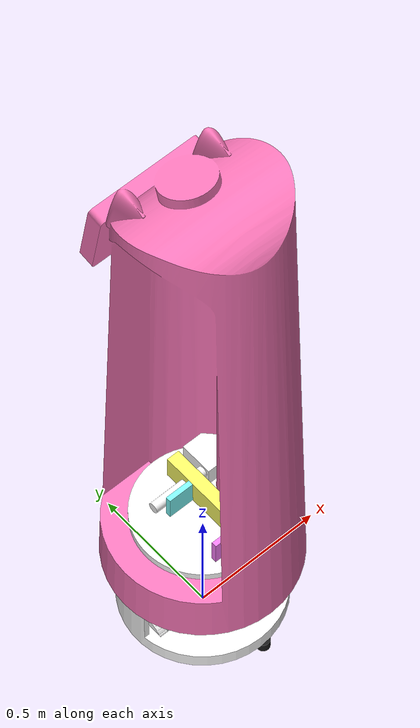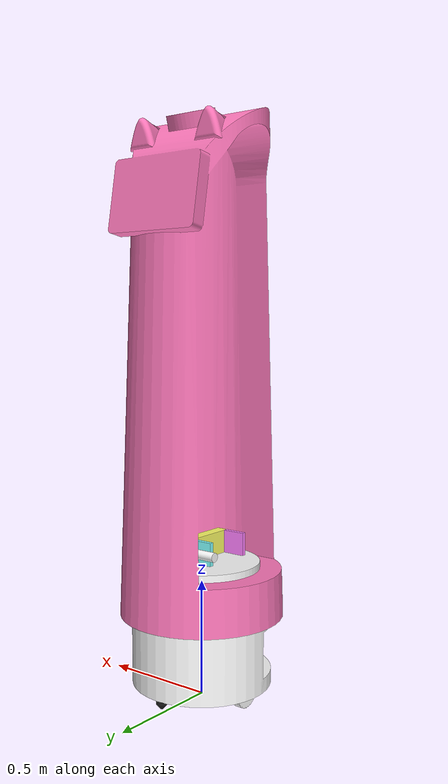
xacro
<?xml version="1.0"?>

<robot name="susy" xmlns:xacro="http://www.ros.org/wiki/xacro">

    <xacro:include filename="$(find susy_description)/urdf/susy_gazebo.xacro"/>
    <xacro:include filename="$(find susy_description)/urdf/susy_ros2_control.xacro"/>

    <xacro:property name="PI" value="3.14159265359"/>

    <xacro:property name="Z" value="0.02"/>
    <!--value="0.04"/-->
    <xacro:property name="escala" value="${Z} ${Z} ${Z}"/>

    <link name="base_footprint"/>

    <link name="base_link">
        <inertial>
            <origin xyz="-0.034449 0.0047388 0.015024" rpy="0 0 0" />
            <mass value="0.010403" />
            <inertia
              ixx="7.888E-07"
              ixy="4.0447E-24"
              ixz="-4.6448E-24"
              iyy="1.1661E-06"
              iyz="1.6738E-24"
              izz="7.6385E-07" />
        </inertial>
        <visual>
            <origin xyz="${Z*-15.0} ${Z*15.0} ${Z*0.0}" rpy="${PI/2} 0.0 0.0"/>
            <geometry>
                <mesh filename="package://susy_description/3Dmodels/base_simple.STL" scale="${escala}"/>
            </geometry>
            <material name="white">
                <color rgba="1.0 1.0 1.0 1.0"/>
            </material>
        </visual>
        <collision>
            <origin xyz="${Z*-15.0} ${Z*15.0} ${Z*0.0}" rpy="0.0 0.0 0.0"/>
            <geometry>
                <mesh filename="package://susy_description/3Dmodels/base_simple.STL" scale="${escala}"/>
            </geometry>
        </collision>
    </link>
    <link name="base_alta">
        <inertial>
          <origin
            xyz="-0.00319040539219524 0.049220093924398 0.000981360360559142"
            rpy="0 0 0" />
          <mass
            value="0.0132287477004238" />
          <inertia
            ixx="1.6270779519678E-05"
            ixy="-3.45923665292277E-08"
            ixz="-5.71408335634743E-08"
            iyy="2.21760234097984E-06"
            iyz="-3.04167868780514E-07"
            izz="1.57245413987899E-05" />
        </inertial>
        <visual>
            <origin xyz="${Z*-17.5} ${Z*17.5} ${Z*0}" rpy="${PI/2} 0.0 0.0"/>
            <geometry>
                <mesh filename="package://susy_description/3Dmodels/base_alta.STL" scale="${escala}"/>
            </geometry>
            <material name="pink">
                <color rgba="1.0 0.47 0.733 1.0"/>
            </material>
        </visual>
        <collision>
            <origin xyz="${Z*-17.5} ${Z*17.5} ${Z*0}" rpy="${PI/2} 0.0 0.0"/>
            <geometry>
                <mesh filename="package://susy_description/3Dmodels/base_alta.STL" scale="${escala}"/>
            </geometry>
        </collision>
    </link>

    <link name="right_wheel">
        <inertial>
            <origin
            xyz="6.93889390390723E-18 0 -1.73472347597681E-18"
            rpy="0 0 0" />
            <mass
            value="5.31571052376292E-05" />
            <inertia
            ixx="2.65196676411871E-10"
            ixy="5.99809599461261E-27"
            ixz="-1.26034226898413E-27"
            iyy="1.45400341050665E-10"
            iyz="-4.05381273347173E-26"
            izz="1.45400341050665E-10" />
        </inertial>
        <visual>
            <origin xyz="${Z*0.0} ${Z*3.2} ${Z*-3.2}" rpy="${PI/2} 0.0 0.0"/>
            <geometry>
                <mesh filename="package://susy_description/3Dmodels/rueda.STL" scale="${escala}"/>
            </geometry>
            <material name="ar">
                <color rgba="1.0 1.0 1.0 1.0"/>
            </material>
        </visual>
        <collision>
            <origin xyz="${Z*0.0} ${Z*0.0} ${Z*0.0}" rpy="${PI/2} 0.0 0.0"/>
            <geometry>
                <sphere radius="${Z*3.2}"/>
            </geometry>
        </collision>
    </link>

    <link name="left_wheel">
        <inertial>
        <origin
            xyz="-3.46944695195361E-18 0 1.73472347597681E-18"
            rpy="0 0 0" />
        <mass
            value="5.31571052376294E-05" />
        <inertia
            ixx="2.65196676411872E-10"
            ixy="7.18881747627078E-27"
            ixz="-2.71331529614589E-27"
            iyy="1.45400341050665E-10"
            iyz="-4.21932577051101E-26"
            izz="1.45400341050665E-10" />
        </inertial>
        <visual>
            <origin xyz="${Z*-1.7} ${Z*3.2} ${Z*-3.2}" rpy="${PI/2} 0.0 0.0"/>
            <geometry>
                <mesh filename="package://susy_description/3Dmodels/rueda.STL" scale="${escala}"/>
            </geometry>
            <material name="ar">
                <color rgba="1.0 1.0 1.0 1.0"/>
            </material>
        </visual>
        <collision>
            <origin xyz="${Z*0.0} ${Z*0} ${Z*0}" rpy="${PI/2} 0.0 0.0"/>
            <geometry>
                <sphere radius="${Z*3.2}"/>
            </geometry>
        </collision>
    </link>

    <link name="caster_front">
        <inertial>
          <origin
            xyz="0 0.00194107729719985 -3.46944695195361E-18"
            rpy="0 0 0" />
          <mass
            value="1.19568337316797E-05" />
          <inertia
            ixx="1.10150680331523E-11"
            ixy="1.84136831372096E-44"
            ixz="-1.70132457547993E-44"
            iyy="8.50890915412933E-12"
            iyz="9.91516005255474E-28"
            izz="1.10150680331523E-11" />
        </inertial>
        <visual>
            <origin xyz="0.0 0.0 ${Z*-3.2}" rpy="${PI/2} 0.0 0.0"/>
            <geometry>
                <mesh filename="package://susy_description/3Dmodels/caster_front.STL" scale="${escala}"/>
            </geometry>
            <material name="dark">
                <color rgba="0.1 0.1 0.1 1.0"/>
            </material>
        </visual>
        <collision>
            <origin xyz="0.0 0.0 ${Z*-2.5}" rpy="0.0 0.0 0.0"/>
            <geometry>
                <sphere radius="${Z*0.69}"/>
            </geometry>
        </collision>
    </link>

    <link name="caster_back">
        <inertial>
          <origin
            xyz="0 0.00194107729719985 -0.00124007338649024"
            rpy="0 0 0" />
          <mass
            value="1.19568337316797E-05" />
          <inertia
            ixx="1.10150680331523E-11"
            ixy="1.84136831372096E-44"
            ixz="-1.70132457547992E-44"
            iyy="8.50890915412933E-12"
            iyz="8.24536042386014E-28"
            izz="1.10150680331523E-11" />
        </inertial>
        <visual>
            <origin xyz="0.0 0.0 ${Z*-3.2}" rpy="${PI/2} 0.0 0.0"/>
            <geometry>
                <mesh filename="package://susy_description/3Dmodels/caster_front.STL" scale="${escala}"/>
            </geometry>
            <material name="dark">
                <color rgba="0.1 0.1 0.1 1.0"/>
            </material>
        </visual>
        <collision>
            <origin xyz="0.0 0.0 ${Z*-2.5}" rpy="0.0 0.0 0.0"/>
            <geometry>
                <sphere radius="${Z*0.69}"/>
            </geometry>
        </collision>
    </link>

    <link name="base_brazo">
        <inertial>
            <origin
                xyz="-0.00131190278884245 0.0013952763323219 -0.00100683541399575"
                rpy="0 0 0" />
            <mass
                value="0.000898428749668525" />
            <inertia
                ixx="3.77000106630414E-08"
                ixy="2.55848945742919E-09"
                ixz="-5.95710974441721E-09"
                iyy="7.06087018620749E-08"
                iyz="2.69437289142249E-09"
                izz="3.61921158112464E-08" />
        </inertial>
        <visual>
            <origin xyz="${Z*12.5} ${Z*12.5} ${Z*0}" rpy="${PI/2} 0.0 ${3.0*PI/2.0}"/>
            <geometry>
                <mesh filename="package://susy_description/3Dmodels/base_brazo.STL" scale="${escala}"/>
            </geometry>
            <material name="solidos">
                <color rgba="1.0 1.0 1.0 1.0"/>
            </material>
        </visual>
        <collision>
            <origin xyz="${Z*12.5} ${Z*12.5} ${Z*0}" rpy="${PI/2} 0.0 ${3.0*PI/2.0}"/>
            <geometry>
                <mesh filename="package://susy_description/3Dmodels/base_brazo.STL" scale="${escala}"/>
            </geometry>
        </collision>
    </link>

    <link name="ante_brazo">
        <inertial>
          <origin
            xyz="-0.000162761065659097 0.00249999999999999 -0.00125"
            rpy="0 0 0" />
          <mass
            value="0.000217146018366026" />
          <inertia
            ixx="5.79883389157145E-10"
            ixy="-1.60129883534209E-25"
            ixz="-3.32164714728325E-24"
            iyy="6.02133781017732E-09"
            iyz="1.04570281756909E-25"
            izz="6.37502743020319E-09" />
        </inertial>
        <visual>
            <origin xyz="${Z*0.0} ${Z*0.0} ${Z*0}" rpy="${PI/2} 0.0 ${3.0*PI/2.0}"/>
            <geometry>
                <mesh filename="package://susy_description/3Dmodels/empujar.STL" scale="${escala}"/>
            </geometry>
            <material name="solidos3">
                <color rgba="1.0 1.0 0.4 1.0"/>
            </material>
        </visual>
        <collision>
            <origin xyz="${Z*0.0} ${Z*0.0} ${Z*0}" rpy="${PI/2} 0.0 ${3.0*PI/2.0}"/>
            <geometry>
                <mesh filename="package://susy_description/3Dmodels/empujar.STL" scale="${escala}"/>
            </geometry>
        </collision>
    </link>

    <link name="garraL">
        <inertial>
          <origin
            xyz="-0.0362340963148376 -0.0150572708310525 0.036304075881177"
            rpy="0 0 0" />
          <mass
            value="0.0249807971751331" />
          <inertia
            ixx="3.66050263139615E-05"
            ixy="-1.07320912031314E-07"
            ixz="1.15336633081441E-06"
            iyy="3.61505056274145E-05"
            iyz="3.74952358099008E-07"
            izz="3.57812220103228E-06" />
        </inertial>
        <visual>
            <origin xyz="${Z*0.0} ${Z*0.0} ${Z*0}" rpy="${PI/2} 0.0 ${3.0*PI/2.0}"/>
            <geometry>
                <mesh filename="package://susy_description/3Dmodels/garra.STL" scale="${escala}"/>
            </geometry>
            <material name="solidos2">
                <color rgba="1.0 0.5 1.0 1.0"/>
            </material>
        </visual>
        <collision>
            <origin xyz="${Z*0.0} ${Z*0.0} ${Z*0}" rpy="${PI/2} 0.0 ${3.0*PI/2.0}"/>
            <geometry>
                <mesh filename="package://susy_description/3Dmodels/garra.STL" scale="${escala}"/>
            </geometry>
        </collision>
    </link>

    <link name="garraR">
        <inertial>
          <origin
            xyz="0.000499999999999997 0.0025 0.0025"
            rpy="0 0 0" />
          <mass
            value="2.5E-05" />
          <inertia
            ixx="1.04166666666666E-10"
            ixy="4.5188437401285E-27"
            ixz="6.46234853557053E-27"
            iyy="5.41666666666665E-11"
            iyz="-4.25179285499401E-26"
            izz="5.41666666666666E-11" />
        </inertial>
        <visual>
            <origin xyz="${Z*0.0} ${Z*0.0} ${Z*0}" rpy="${PI/2} 0.0 ${3.0*PI/2.0}"/>
            <geometry>
                <mesh filename="package://susy_description/3Dmodels/garra.STL" scale="${escala}"/>
            </geometry>
            <material name="solido4">
                <color rgba="0.5 1.0 1.0 1.0"/>
            </material>
        </visual>
        <collision>
            <origin xyz="${Z*0.0} ${Z*0.0} ${Z*0}" rpy="${PI/2} 0.0 ${3.0*PI/2.0}"/>
            <geometry>
                <mesh filename="package://susy_description/3Dmodels/garra.STL" scale="${escala}"/>
            </geometry>
        </collision>
    </link>

    <joint name="base_joint" type="fixed">
        <origin xyz="0.0 0.0 ${Z*3.2}" rpy="0.0 0.0 0.0"/>
        <parent link="base_footprint"/>
        <child link="base_link"/>
    </joint>

    <joint name="alta_joint" type="continuous">
        <origin xyz="${Z*0.0} ${Z*0.0} ${Z*15}" rpy="0.0 0.0 ${PI}"/>
        <parent link="base_link"/>
        <child link="base_alta"/>
        <axis xyz="0.0 0.0 1.0"/>
    </joint>

    <joint name="alta_brazo_joint" type="prismatic">
        <origin xyz="${Z*0.0} ${Z*0.0} ${Z*10.0}" rpy="0.0 0.0 ${PI}"/>
        <parent link="base_alta"/>
        <child link="base_brazo"/>
        <limit effort="1000.0" lower="0.0" upper="${Z*63.5}" velocity="0.5"/>
        <axis xyz="0.0 0.0 1.0"/>
    </joint>

    <joint name="ante_brazo_joint" type="prismatic">
        <origin xyz="${Z*0.0} ${Z*-9.0} ${Z*1.5}" rpy="0.0 0.0 ${PI}"/>
        <parent link="base_brazo"/>
        <child link="ante_brazo"/>
        <limit effort="1000.0" lower="0.0" upper="${Z*8.5}" velocity="0.5"/>
        <axis xyz="1.0 0.0 0.0"/>
    </joint>

    <joint name="garra_joint" type="prismatic">
        <origin xyz="${Z*0.0} ${Z*-1.0} ${Z*0.0}" rpy="0.0 0.0 ${PI}"/>
        <parent link="ante_brazo"/>
        <child link="garraL"/>
        <limit effort="1000.0" lower="0.0" upper="${Z*5.25}" velocity="0.5"/>
        <axis xyz="0.0 1.0 0.0"/>
    </joint>

    <joint name="garra_joint_mimic" type="prismatic">
        <origin xyz="${Z*0.0} ${Z*-12.5} ${Z*0.0}" rpy="0.0 0.0 ${PI}"/>
        <parent link="ante_brazo"/>
        <child link="garraR"/>
        <limit effort="1000.0" lower="0.0" upper="${Z*7.0}" velocity="0.5"/>
        <axis xyz="0.0 1.0 0.0"/>
        <mimic joint = "garra_joint" multiplier = "-1.0"/>
    </joint>

    <joint name="base_caster_front" type="fixed">
        <origin xyz="0.0 ${Z*13} ${Z*0}" rpy="0.0 0.0 0.0"/>
        <parent link="base_link"/>
        <child link="caster_front"/>
    </joint>

    <joint name="base_caster_back" type="fixed">
        <origin xyz="0.0 ${Z*-13} ${Z*0}" rpy="0.0 0.0 0.0"/>
        <parent link="base_link"/>
        <child link="caster_back"/>
    </joint>

    <joint name="base_right_wheel" type="continuous">
        <origin xyz="${Z*10.5} ${Z*0.0} ${Z*0.0}" rpy="0.0 0.0 0.0"/>
        <parent link="base_link"/>
        <child link="right_wheel"/>
        <axis xyz="-1.0 0.0 0.0"/>
    </joint>

    <joint name="base_left_wheel" type="continuous">
        <origin xyz="${Z*-10.5} ${Z*0.0} ${Z*0.0}" rpy="0.0 0.0 0.0"/>
        <parent link="base_link"/>
        <child link="left_wheel"/>
        <axis xyz="-1.0 0.0 0.0"/>
    </joint>

</robot>
